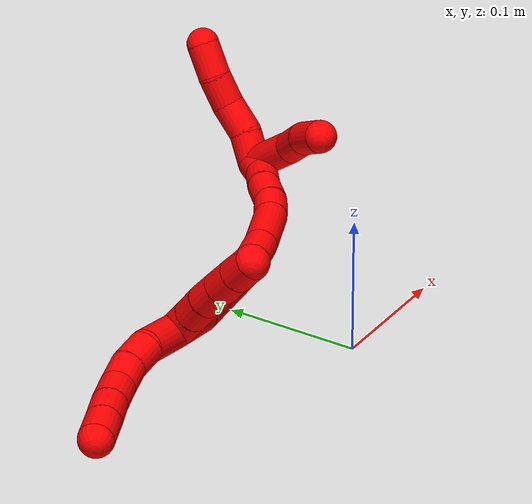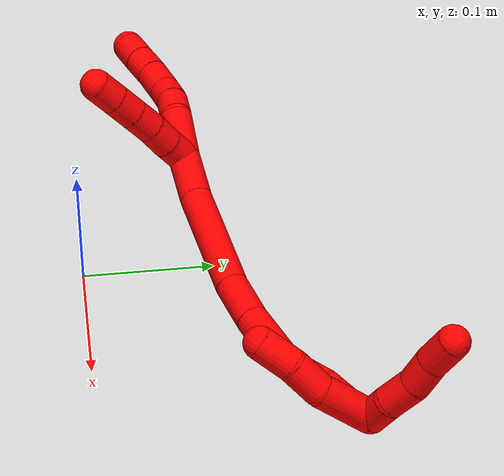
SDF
<sdf version="1.7">
 <world name="default">
  <model name="photoneo_s_sensor">
   <static>1</static>
   <pose>0 0 2 1.57079 1.57079 3.14159</pose>
   <link name="link">
    <inertial><mass>0.1</mass></inertial>
    <sensor name="sensor" type="depth">
     <update_rate>30</update_rate>
     <camera>
      <horizontal_fov>1.22</horizontal_fov>
      <image><width>1920</width><height>1200</height><format>B8G8R8</format></image>
      <clip><near>0.1</near><far>4</far></clip>
      <depth_camera><output>points</output></depth_camera>
     </camera>
     <plugin name="camera_plugin" filename="libgazebo_ros_depth_camera.so">
      <baseline>0.2</baseline>
      <alwaysOn>1</alwaysOn>
      <updateRate>0.0</updateRate>
      <cameraName>camera_ir</cameraName>
      <imageTopicName>/camera/color/image_raw</imageTopicName>
      <cameraInfoTopicName>/camera/color/camera_info</cameraInfoTopicName>
      <depthImageTopicName>/camera/depth/image_raw</depthImageTopicName>
      <depthImageCameraInfoTopicName>/camera/depth/camera_info</depthImageCameraInfoTopicName>
      <pointCloudTopicName>/camera/depth/points</pointCloudTopicName>
      <frameName>fr_optical</frameName>
      <pointCloudCutoff>0.1</pointCloudCutoff>
      <pointCloudCutoffMax>2.0</pointCloudCutoffMax>
      <distortionK1>0</distortionK1>
      <distortionK2>0</distortionK2>
      <distortionK3>0</distortionK3>
      <distortionT1>0</distortionT1>
      <distortionT2>0</distortionT2>
      <CxPrime>0</CxPrime>
      <Cx>0</Cx>
      <Cy>0</Cy>
      <focalLength>0</focalLength>
      <hackBaseline>0</hackBaseline>
     </plugin>
    </sensor>
   </link>
  </model>
  <model name="2">
   <static>0</static>
   <link name="2">
    <collision name="collision-cylinder-e_1_2_8">
     <pose>-0.0105 -0.000421 -0.017934 3.11811 -0.529544 -3.05503</pose>
     <geometry><cylinder><radius>0.0125</radius><length>0.041572</length></cylinder></geometry>
     <surface>
      <friction><ode><mu>1.16</mu><mu2>1.16</mu2><slip1>0</slip1><slip2>0</slip2></ode></friction>
      <contact><ode><kp>1e+06</kp><kd>1</kd><max_vel>0</max_vel><min_depth>0.001</min_depth></ode></contact>
     </surface>
    </collision>
    <visual name="visual-cylinder-e_1_2_8">
     <pose>-0.0105 -0.000421 -0.017934 3.11811 -0.529544 -3.05503</pose>
     <geometry><cylinder><radius>0.0125</radius><length>0.041572</length></cylinder></geometry>
     <material><ambient>1 0 0 1</ambient></material>
    </visual>
    <collision name="collision-cylinder-e_2_8_9">
     <pose>-0.025081 0.00215 -0.045741 -2.84726 -0.376693 1.81958</pose>
     <geometry><cylinder><radius>0.0125</radius><length>0.022188</length></cylinder></geometry>
     <surface>
      <friction><ode><mu>1.16</mu><mu2>1.16</mu2><slip1>0</slip1><slip2>0</slip2></ode></friction>
      <contact><ode><kp>1e+06</kp><kd>1</kd><max_vel>0</max_vel><min_depth>0.001</min_depth></ode></contact>
     </surface>
    </collision>
    <visual name="visual-cylinder-e_2_8_9">
     <pose>-0.025081 0.00215 -0.045741 -2.84726 -0.376693 1.81958</pose>
     <geometry><cylinder><radius>0.0125</radius><length>0.022188</length></cylinder></geometry>
     <material><ambient>1 0 0 1</ambient></material>
    </visual>
    <collision name="collision-cylinder-e_3_9_10">
     <pose>-0.031024 0.007864 -0.065318 -2.86827 -0.182679 1.17514</pose>
     <geometry><cylinder><radius>0.0125</radius><length>0.020498</length></cylinder></geometry>
     <surface>
      <friction><ode><mu>1.16</mu><mu2>1.16</mu2><slip1>0</slip1><slip2>0</slip2></ode></friction>
      <contact><ode><kp>1e+06</kp><kd>1</kd><max_vel>0</max_vel><min_depth>0.001</min_depth></ode></contact>
     </surface>
    </collision>
    <visual name="visual-cylinder-e_3_9_10">
     <pose>-0.031024 0.007864 -0.065318 -2.86827 -0.182679 1.17514</pose>
     <geometry><cylinder><radius>0.0125</radius><length>0.020498</length></cylinder></geometry>
     <material><ambient>1 0 0 1</ambient></material>
    </visual>
    <collision name="collision-cylinder-e_4_10_11">
     <pose>-0.035 0.010392 -0.08654 3.12488 -0.181513 -2.9585</pose>
     <geometry><cylinder><radius>0.0125</radius><length>0.023422</length></cylinder></geometry>
     <surface>
      <friction><ode><mu>1.16</mu><mu2>1.16</mu2><slip1>0</slip1><slip2>0</slip2></ode></friction>
      <contact><ode><kp>1e+06</kp><kd>1</kd><max_vel>0</max_vel><min_depth>0.001</min_depth></ode></contact>
     </surface>
    </collision>
    <visual name="visual-cylinder-e_4_10_11">
     <pose>-0.035 0.010392 -0.08654 3.12488 -0.181513 -2.9585</pose>
     <geometry><cylinder><radius>0.0125</radius><length>0.023422</length></cylinder></geometry>
     <material><ambient>1 0 0 1</ambient></material>
    </visual>
    <collision name="collision-cylinder-e_5_11_12">
     <pose>-0.038345 0.010185 -0.10828 3.14022 -0.119852 -3.11867</pose>
     <geometry><cylinder><radius>0.0125</radius><length>0.020594</length></cylinder></geometry>
     <surface>
      <friction><ode><mu>1.16</mu><mu2>1.16</mu2><slip1>0</slip1><slip2>0</slip2></ode></friction>
      <contact><ode><kp>1e+06</kp><kd>1</kd><max_vel>0</max_vel><min_depth>0.001</min_depth></ode></contact>
     </surface>
    </collision>
    <visual name="visual-cylinder-e_5_11_12">
     <pose>-0.038345 0.010185 -0.10828 3.14022 -0.119852 -3.11867</pose>
     <geometry><cylinder><radius>0.0125</radius><length>0.020594</length></cylinder></geometry>
     <material><ambient>1 0 0 1</ambient></material>
    </visual>
    <collision name="collision-cylinder-e_6_12_6">
     <pose>-0.041052 0.010538 -0.129259 -3.10749 -0.136279 2.6518</pose>
     <geometry><cylinder><radius>0.0125</radius><length>0.021725</length></cylinder></geometry>
     <surface>
      <friction><ode><mu>1.16</mu><mu2>1.16</mu2><slip1>0</slip1><slip2>0</slip2></ode></friction>
      <contact><ode><kp>1e+06</kp><kd>1</kd><max_vel>0</max_vel><min_depth>0.001</min_depth></ode></contact>
     </surface>
    </collision>
    <visual name="visual-cylinder-e_6_12_6">
     <pose>-0.041052 0.010538 -0.129259 -3.10749 -0.136279 2.6518</pose>
     <geometry><cylinder><radius>0.0125</radius><length>0.021725</length></cylinder></geometry>
     <material><ambient>1 0 0 1</ambient></material>
    </visual>
    <collision name="collision-cylinder-e_1_2_13">
     <pose>0.000914 -0.009584 -0.002705 1.84592 0.091547 0.120903</pose>
     <geometry><cylinder><radius>0.0125</radius><length>0.02</length></cylinder></geometry>
     <surface>
      <friction><ode><mu>1.16</mu><mu2>1.16</mu2><slip1>0</slip1><slip2>0</slip2></ode></friction>
      <contact><ode><kp>1e+06</kp><kd>1</kd><max_vel>0</max_vel><min_depth>0.001</min_depth></ode></contact>
     </surface>
    </collision>
    <visual name="visual-cylinder-e_1_2_13">
     <pose>0.000914 -0.009584 -0.002705 1.84592 0.091547 0.120903</pose>
     <geometry><cylinder><radius>0.0125</radius><length>0.02</length></cylinder></geometry>
     <material><ambient>1 0 0 1</ambient></material>
    </visual>
    <collision name="collision-cylinder-e_2_13_14">
     <pose>0.00225 -0.028638 -0.008591 1.8948 0.042206 0.058688</pose>
     <geometry><cylinder><radius>0.0125</radius><length>0.02</length></cylinder></geometry>
     <surface>
      <friction><ode><mu>1.16</mu><mu2>1.16</mu2><slip1>0</slip1><slip2>0</slip2></ode></friction>
      <contact><ode><kp>1e+06</kp><kd>1</kd><max_vel>0</max_vel><min_depth>0.001</min_depth></ode></contact>
     </surface>
    </collision>
    <visual name="visual-cylinder-e_2_13_14">
     <pose>0.00225 -0.028638 -0.008591 1.8948 0.042206 0.058688</pose>
     <geometry><cylinder><radius>0.0125</radius><length>0.02</length></cylinder></geometry>
     <material><ambient>1 0 0 1</ambient></material>
    </visual>
    <collision name="collision-cylinder-e_3_14_15">
     <pose>0.003872 -0.047486 -0.015036 1.90577 0.120266 0.169009</pose>
     <geometry><cylinder><radius>0.0125</radius><length>0.02</length></cylinder></geometry>
     <surface>
      <friction><ode><mu>1.16</mu><mu2>1.16</mu2><slip1>0</slip1><slip2>0</slip2></ode></friction>
      <contact><ode><kp>1e+06</kp><kd>1</kd><max_vel>0</max_vel><min_depth>0.001</min_depth></ode></contact>
     </surface>
    </collision>
    <visual name="visual-cylinder-e_3_14_15">
     <pose>0.003872 -0.047486 -0.015036 1.90577 0.120266 0.169009</pose>
     <geometry><cylinder><radius>0.0125</radius><length>0.02</length></cylinder></geometry>
     <material><ambient>1 0 0 1</ambient></material>
    </visual>
    <collision name="collision-cylinder-e_4_15_16">
     <pose>0.006288 -0.066196 -0.021673 1.91763 0.121949 0.173526</pose>
     <geometry><cylinder><radius>0.0125</radius><length>0.02</length></cylinder></geometry>
     <surface>
      <friction><ode><mu>1.16</mu><mu2>1.16</mu2><slip1>0</slip1><slip2>0</slip2></ode></friction>
      <contact><ode><kp>1e+06</kp><kd>1</kd><max_vel>0</max_vel><min_depth>0.001</min_depth></ode></contact>
     </surface>
    </collision>
    <visual name="visual-cylinder-e_4_15_16">
     <pose>0.006288 -0.066196 -0.021673 1.91763 0.121949 0.173526</pose>
     <geometry><cylinder><radius>0.0125</radius><length>0.02</length></cylinder></geometry>
     <material><ambient>1 0 0 1</ambient></material>
    </visual>
    <collision name="collision-cylinder-e_5_16_5">
     <pose>0.0088 -0.084819 -0.028519 1.92849 0.12986 0.18689</pose>
     <geometry><cylinder><radius>0.0125</radius><length>0.02</length></cylinder></geometry>
     <surface>
      <friction><ode><mu>1.16</mu><mu2>1.16</mu2><slip1>0</slip1><slip2>0</slip2></ode></friction>
      <contact><ode><kp>1e+06</kp><kd>1</kd><max_vel>0</max_vel><min_depth>0.001</min_depth></ode></contact>
     </surface>
    </collision>
    <visual name="visual-cylinder-e_5_16_5">
     <pose>0.0088 -0.084819 -0.028519 1.92849 0.12986 0.18689</pose>
     <geometry><cylinder><radius>0.0125</radius><length>0.02</length></cylinder></geometry>
     <material><ambient>1 0 0 1</ambient></material>
    </visual>
    <collision name="collision-cylinder-e_1_2_17">
     <pose>0.009092 0.001757 0.017634 -0.099326 0.474057 -0.024013</pose>
     <geometry><cylinder><radius>0.0125</radius><length>0.039835</length></cylinder></geometry>
     <surface>
      <friction><ode><mu>1.16</mu><mu2>1.16</mu2><slip1>0</slip1><slip2>0</slip2></ode></friction>
      <contact><ode><kp>1e+06</kp><kd>1</kd><max_vel>0</max_vel><min_depth>0.001</min_depth></ode></contact>
     </surface>
    </collision>
    <visual name="visual-cylinder-e_1_2_17">
     <pose>0.009092 0.001757 0.017634 -0.099326 0.474057 -0.024013</pose>
     <geometry><cylinder><radius>0.0125</radius><length>0.039835</length></cylinder></geometry>
     <material><ambient>1 0 0 1</ambient></material>
    </visual>
    <collision name="collision-cylinder-e_2_17_18">
     <pose>0.034629 0.004017 0.077939 -0.011771 0.367802 -0.00219</pose>
     <geometry><cylinder><radius>0.0125</radius><length>0.091467</length></cylinder></geometry>
     <surface>
      <friction><ode><mu>1.16</mu><mu2>1.16</mu2><slip1>0</slip1><slip2>0</slip2></ode></friction>
      <contact><ode><kp>1e+06</kp><kd>1</kd><max_vel>0</max_vel><min_depth>0.001</min_depth></ode></contact>
     </surface>
    </collision>
    <visual name="visual-cylinder-e_2_17_18">
     <pose>0.034629 0.004017 0.077939 -0.011771 0.367802 -0.00219</pose>
     <geometry><cylinder><radius>0.0125</radius><length>0.091467</length></cylinder></geometry>
     <material><ambient>1 0 0 1</ambient></material>
    </visual>
    <collision name="collision-cylinder-e_3_18_19">
     <pose>0.055621 0.004496 0.139049 0.001245 0.241817 0.000151</pose>
     <geometry><cylinder><radius>0.0125</radius><length>0.037981</length></cylinder></geometry>
     <surface>
      <friction><ode><mu>1.16</mu><mu2>1.16</mu2><slip1>0</slip1><slip2>0</slip2></ode></friction>
      <contact><ode><kp>1e+06</kp><kd>1</kd><max_vel>0</max_vel><min_depth>0.001</min_depth></ode></contact>
     </surface>
    </collision>
    <visual name="visual-cylinder-e_3_18_19">
     <pose>0.055621 0.004496 0.139049 0.001245 0.241817 0.000151</pose>
     <geometry><cylinder><radius>0.0125</radius><length>0.037981</length></cylinder></geometry>
     <material><ambient>1 0 0 1</ambient></material>
    </visual>
    <collision name="collision-cylinder-e_4_19_20">
     <pose>0.063453 0.004645 0.179356 -0.007859 0.14908 -0.000587</pose>
     <geometry><cylinder><radius>0.0125</radius><length>0.04423</length></cylinder></geometry>
     <surface>
      <friction><ode><mu>1.16</mu><mu2>1.16</mu2><slip1>0</slip1><slip2>0</slip2></ode></friction>
      <contact><ode><kp>1e+06</kp><kd>1</kd><max_vel>0</max_vel><min_depth>0.001</min_depth></ode></contact>
     </surface>
    </collision>
    <visual name="visual-cylinder-e_4_19_20">
     <pose>0.063453 0.004645 0.179356 -0.007859 0.14908 -0.000587</pose>
     <geometry><cylinder><radius>0.0125</radius><length>0.04423</length></cylinder></geometry>
     <material><ambient>1 0 0 1</ambient></material>
    </visual>
    <collision name="collision-cylinder-e_5_20_21">
     <pose>0.066318 0.004928 0.211314 -0.010972 -0.041596 0.000228</pose>
     <geometry><cylinder><radius>0.0125</radius><length>0.020196</length></cylinder></geometry>
     <surface>
      <friction><ode><mu>1.16</mu><mu2>1.16</mu2><slip1>0</slip1><slip2>0</slip2></ode></friction>
      <contact><ode><kp>1e+06</kp><kd>1</kd><max_vel>0</max_vel><min_depth>0.001</min_depth></ode></contact>
     </surface>
    </collision>
    <visual name="visual-cylinder-e_5_20_21">
     <pose>0.066318 0.004928 0.211314 -0.010972 -0.041596 0.000228</pose>
     <geometry><cylinder><radius>0.0125</radius><length>0.020196</length></cylinder></geometry>
     <material><ambient>1 0 0 1</ambient></material>
    </visual>
    <collision name="collision-cylinder-e_6_21_22">
     <pose>0.06351 0.006915 0.232788 -0.163395 -0.204053 0.016766</pose>
     <geometry><cylinder><radius>0.0125</radius><length>0.023565</length></cylinder></geometry>
     <surface>
      <friction><ode><mu>1.16</mu><mu2>1.16</mu2><slip1>0</slip1><slip2>0</slip2></ode></friction>
      <contact><ode><kp>1e+06</kp><kd>1</kd><max_vel>0</max_vel><min_depth>0.001</min_depth></ode></contact>
     </surface>
    </collision>
    <visual name="visual-cylinder-e_6_21_22">
     <pose>0.06351 0.006915 0.232788 -0.163395 -0.204053 0.016766</pose>
     <geometry><cylinder><radius>0.0125</radius><length>0.023565</length></cylinder></geometry>
     <material><ambient>1 0 0 1</ambient></material>
    </visual>
    <collision name="collision-cylinder-e_7_22_23">
     <pose>0.060808 0.010771 0.255316 -0.175759 -0.027788 0.002448</pose>
     <geometry><cylinder><radius>0.0125</radius><length>0.022645</length></cylinder></geometry>
     <surface>
      <friction><ode><mu>1.16</mu><mu2>1.16</mu2><slip1>0</slip1><slip2>0</slip2></ode></friction>
      <contact><ode><kp>1e+06</kp><kd>1</kd><max_vel>0</max_vel><min_depth>0.001</min_depth></ode></contact>
     </surface>
    </collision>
    <visual name="visual-cylinder-e_7_22_23">
     <pose>0.060808 0.010771 0.255316 -0.175759 -0.027788 0.002448</pose>
     <geometry><cylinder><radius>0.0125</radius><length>0.022645</length></cylinder></geometry>
     <material><ambient>1 0 0 1</ambient></material>
    </visual>
    <collision name="collision-cylinder-e_8_23_1">
     <pose>0.058121 0.01539 0.275851 -0.274043 -0.238523 0.033043</pose>
     <geometry><cylinder><radius>0.0125</radius><length>0.02008</length></cylinder></geometry>
     <surface>
      <friction><ode><mu>1.16</mu><mu2>1.16</mu2><slip1>0</slip1><slip2>0</slip2></ode></friction>
      <contact><ode><kp>1e+06</kp><kd>1</kd><max_vel>0</max_vel><min_depth>0.001</min_depth></ode></contact>
     </surface>
    </collision>
    <visual name="visual-cylinder-e_8_23_1">
     <pose>0.058121 0.01539 0.275851 -0.274043 -0.238523 0.033043</pose>
     <geometry><cylinder><radius>0.0125</radius><length>0.02008</length></cylinder></geometry>
     <material><ambient>1 0 0 1</ambient></material>
    </visual>
    <collision name="collision-cylinder-e_1_1_24">
     <pose>0.047955 0.011032 0.291443 0.84586 -0.694933 -0.323168</pose>
     <geometry><cylinder><radius>0.0125</radius><length>0.024346</length></cylinder></geometry>
     <surface>
      <friction><ode><mu>1.16</mu><mu2>1.16</mu2><slip1>0</slip1><slip2>0</slip2></ode></friction>
      <contact><ode><kp>1e+06</kp><kd>1</kd><max_vel>0</max_vel><min_depth>0.001</min_depth></ode></contact>
     </surface>
    </collision>
    <visual name="visual-cylinder-e_1_1_24">
     <pose>0.047955 0.011032 0.291443 0.84586 -0.694933 -0.323168</pose>
     <geometry><cylinder><radius>0.0125</radius><length>0.024346</length></cylinder></geometry>
     <material><ambient>1 0 0 1</ambient></material>
    </visual>
    <collision name="collision-cylinder-e_2_24_25">
     <pose>0.029754 -0.000554 0.303505 0.663956 -0.949889 -0.350883</pose>
     <geometry><cylinder><radius>0.0125</radius><length>0.025589</length></cylinder></geometry>
     <surface>
      <friction><ode><mu>1.16</mu><mu2>1.16</mu2><slip1>0</slip1><slip2>0</slip2></ode></friction>
      <contact><ode><kp>1e+06</kp><kd>1</kd><max_vel>0</max_vel><min_depth>0.001</min_depth></ode></contact>
     </surface>
    </collision>
    <visual name="visual-cylinder-e_2_24_25">
     <pose>0.029754 -0.000554 0.303505 0.663956 -0.949889 -0.350883</pose>
     <geometry><cylinder><radius>0.0125</radius><length>0.025589</length></cylinder></geometry>
     <material><ambient>1 0 0 1</ambient></material>
    </visual>
    <collision name="collision-cylinder-e_3_25_26">
     <pose>0.0101 -0.011592 0.312853 1.07537 -0.900364 -0.561144</pose>
     <geometry><cylinder><radius>0.0125</radius><length>0.023604</length></cylinder></geometry>
     <surface>
      <friction><ode><mu>1.16</mu><mu2>1.16</mu2><slip1>0</slip1><slip2>0</slip2></ode></friction>
      <contact><ode><kp>1e+06</kp><kd>1</kd><max_vel>0</max_vel><min_depth>0.001</min_depth></ode></contact>
     </surface>
    </collision>
    <visual name="visual-cylinder-e_3_25_26">
     <pose>0.0101 -0.011592 0.312853 1.07537 -0.900364 -0.561144</pose>
     <geometry><cylinder><radius>0.0125</radius><length>0.023604</length></cylinder></geometry>
     <material><ambient>1 0 0 1</ambient></material>
    </visual>
    <collision name="collision-cylinder-e_4_26_4">
     <pose>-0.008434 -0.025408 0.32222 0.896948 -0.778007 -0.389459</pose>
     <geometry><cylinder><radius>0.0125</radius><length>0.026462</length></cylinder></geometry>
     <surface>
      <friction><ode><mu>1.16</mu><mu2>1.16</mu2><slip1>0</slip1><slip2>0</slip2></ode></friction>
      <contact><ode><kp>1e+06</kp><kd>1</kd><max_vel>0</max_vel><min_depth>0.001</min_depth></ode></contact>
     </surface>
    </collision>
    <visual name="visual-cylinder-e_4_26_4">
     <pose>-0.008434 -0.025408 0.32222 0.896948 -0.778007 -0.389459</pose>
     <geometry><cylinder><radius>0.0125</radius><length>0.026462</length></cylinder></geometry>
     <material><ambient>1 0 0 1</ambient></material>
    </visual>
    <collision name="collision-cylinder-e_1_1_27">
     <pose>0.061631 -0.000971 0.274861 2.07086 0.265235 0.442443</pose>
     <geometry><cylinder><radius>0.0125</radius><length>0.044874</length></cylinder></geometry>
     <surface>
      <friction><ode><mu>1.16</mu><mu2>1.16</mu2><slip1>0</slip1><slip2>0</slip2></ode></friction>
      <contact><ode><kp>1e+06</kp><kd>1</kd><max_vel>0</max_vel><min_depth>0.001</min_depth></ode></contact>
     </surface>
    </collision>
    <visual name="visual-cylinder-e_1_1_27">
     <pose>0.061631 -0.000971 0.274861 2.07086 0.265235 0.442443</pose>
     <geometry><cylinder><radius>0.0125</radius><length>0.044874</length></cylinder></geometry>
     <material><ambient>1 0 0 1</ambient></material>
    </visual>
    <collision name="collision-cylinder-e_2_27_28">
     <pose>0.067868 -0.030367 0.256232 2.24151 0.026813 0.055489</pose>
     <geometry><cylinder><radius>0.0125</radius><length>0.026548</length></cylinder></geometry>
     <surface>
      <friction><ode><mu>1.16</mu><mu2>1.16</mu2><slip1>0</slip1><slip2>0</slip2></ode></friction>
      <contact><ode><kp>1e+06</kp><kd>1</kd><max_vel>0</max_vel><min_depth>0.001</min_depth></ode></contact>
     </surface>
    </collision>
    <visual name="visual-cylinder-e_2_27_28">
     <pose>0.067868 -0.030367 0.256232 2.24151 0.026813 0.055489</pose>
     <geometry><cylinder><radius>0.0125</radius><length>0.026548</length></cylinder></geometry>
     <material><ambient>1 0 0 1</ambient></material>
    </visual>
    <collision name="collision-cylinder-e_3_28_3">
     <pose>0.070462 -0.05023 0.237519 2.40614 0.157234 0.403417</pose>
     <geometry><cylinder><radius>0.0125</radius><length>0.028578</length></cylinder></geometry>
     <surface>
      <friction><ode><mu>1.16</mu><mu2>1.16</mu2><slip1>0</slip1><slip2>0</slip2></ode></friction>
      <contact><ode><kp>1e+06</kp><kd>1</kd><max_vel>0</max_vel><min_depth>0.001</min_depth></ode></contact>
     </surface>
    </collision>
    <visual name="visual-cylinder-e_3_28_3">
     <pose>0.070462 -0.05023 0.237519 2.40614 0.157234 0.403417</pose>
     <geometry><cylinder><radius>0.0125</radius><length>0.028578</length></cylinder></geometry>
     <material><ambient>1 0 0 1</ambient></material>
    </visual>
    <collision name="collision-sphere-3">
     <pose>0.072699 -0.059698 0.227054 0 -0 0</pose>
     <geometry><sphere><radius>0.0125</radius></sphere></geometry>
     <surface>
      <friction><ode><mu>1.16</mu><mu2>1.16</mu2><slip1>0</slip1><slip2>0</slip2></ode></friction>
      <contact><ode><kp>1e+06</kp><kd>1</kd><max_vel>0</max_vel><min_depth>0.001</min_depth></ode></contact>
     </surface>
    </collision>
    <visual name="visual-sphere-3">
     <pose>0.072699 -0.059698 0.227054 0 -0 0</pose>
     <geometry><sphere><radius>0.0125</radius></sphere></geometry>
     <material><ambient>1 0 0 1</ambient></material>
    </visual>
    <collision name="collision-sphere-28">
     <pose>0.068224 -0.040761 0.247984 0 -0 0</pose>
     <geometry><sphere><radius>0.0125</radius></sphere></geometry>
     <surface>
      <friction><ode><mu>1.16</mu><mu2>1.16</mu2><slip1>0</slip1><slip2>0</slip2></ode></friction>
      <contact><ode><kp>1e+06</kp><kd>1</kd><max_vel>0</max_vel><min_depth>0.001</min_depth></ode></contact>
     </surface>
    </collision>
    <visual name="visual-sphere-28">
     <pose>0.068224 -0.040761 0.247984 0 -0 0</pose>
     <geometry><sphere><radius>0.0125</radius></sphere></geometry>
     <material><ambient>1 0 0 1</ambient></material>
    </visual>
    <collision name="collision-sphere-27">
     <pose>0.067512 -0.019972 0.264479 0 -0 0</pose>
     <geometry><sphere><radius>0.0125</radius></sphere></geometry>
     <surface>
      <friction><ode><mu>1.16</mu><mu2>1.16</mu2><slip1>0</slip1><slip2>0</slip2></ode></friction>
      <contact><ode><kp>1e+06</kp><kd>1</kd><max_vel>0</max_vel><min_depth>0.001</min_depth></ode></contact>
     </surface>
    </collision>
    <visual name="visual-sphere-27">
     <pose>0.067512 -0.019972 0.264479 0 -0 0</pose>
     <geometry><sphere><radius>0.0125</radius></sphere></geometry>
     <material><ambient>1 0 0 1</ambient></material>
    </visual>
    <collision name="collision-sphere-4">
     <pose>-0.01772 -0.032772 0.328101 0 -0 0</pose>
     <geometry><sphere><radius>0.0125</radius></sphere></geometry>
     <surface>
      <friction><ode><mu>1.16</mu><mu2>1.16</mu2><slip1>0</slip1><slip2>0</slip2></ode></friction>
      <contact><ode><kp>1e+06</kp><kd>1</kd><max_vel>0</max_vel><min_depth>0.001</min_depth></ode></contact>
     </surface>
    </collision>
    <visual name="visual-sphere-4">
     <pose>-0.01772 -0.032772 0.328101 0 -0 0</pose>
     <geometry><sphere><radius>0.0125</radius></sphere></geometry>
     <material><ambient>1 0 0 1</ambient></material>
    </visual>
    <collision name="collision-sphere-26">
     <pose>0.000852 -0.018043 0.316339 0 -0 0</pose>
     <geometry><sphere><radius>0.0125</radius></sphere></geometry>
     <surface>
      <friction><ode><mu>1.16</mu><mu2>1.16</mu2><slip1>0</slip1><slip2>0</slip2></ode></friction>
      <contact><ode><kp>1e+06</kp><kd>1</kd><max_vel>0</max_vel><min_depth>0.001</min_depth></ode></contact>
     </surface>
    </collision>
    <visual name="visual-sphere-26">
     <pose>0.000852 -0.018043 0.316339 0 -0 0</pose>
     <geometry><sphere><radius>0.0125</radius></sphere></geometry>
     <material><ambient>1 0 0 1</ambient></material>
    </visual>
    <collision name="collision-sphere-25">
     <pose>0.019347 -0.005141 0.309367 0 -0 0</pose>
     <geometry><sphere><radius>0.0125</radius></sphere></geometry>
     <surface>
      <friction><ode><mu>1.16</mu><mu2>1.16</mu2><slip1>0</slip1><slip2>0</slip2></ode></friction>
      <contact><ode><kp>1e+06</kp><kd>1</kd><max_vel>0</max_vel><min_depth>0.001</min_depth></ode></contact>
     </surface>
    </collision>
    <visual name="visual-sphere-25">
     <pose>0.019347 -0.005141 0.309367 0 -0 0</pose>
     <geometry><sphere><radius>0.0125</radius></sphere></geometry>
     <material><ambient>1 0 0 1</ambient></material>
    </visual>
    <collision name="collision-sphere-24">
     <pose>0.04016 0.004033 0.297643 0 -0 0</pose>
     <geometry><sphere><radius>0.0125</radius></sphere></geometry>
     <surface>
      <friction><ode><mu>1.16</mu><mu2>1.16</mu2><slip1>0</slip1><slip2>0</slip2></ode></friction>
      <contact><ode><kp>1e+06</kp><kd>1</kd><max_vel>0</max_vel><min_depth>0.001</min_depth></ode></contact>
     </surface>
    </collision>
    <visual name="visual-sphere-24">
     <pose>0.04016 0.004033 0.297643 0 -0 0</pose>
     <geometry><sphere><radius>0.0125</radius></sphere></geometry>
     <material><ambient>1 0 0 1</ambient></material>
    </visual>
    <collision name="collision-sphere-1">
     <pose>0.055749 0.018031 0.285243 0 -0 0</pose>
     <geometry><sphere><radius>0.0125</radius></sphere></geometry>
     <surface>
      <friction><ode><mu>1.16</mu><mu2>1.16</mu2><slip1>0</slip1><slip2>0</slip2></ode></friction>
      <contact><ode><kp>1e+06</kp><kd>1</kd><max_vel>0</max_vel><min_depth>0.001</min_depth></ode></contact>
     </surface>
    </collision>
    <visual name="visual-sphere-1">
     <pose>0.055749 0.018031 0.285243 0 -0 0</pose>
     <geometry><sphere><radius>0.0125</radius></sphere></geometry>
     <material><ambient>1 0 0 1</ambient></material>
    </visual>
    <collision name="collision-sphere-23">
     <pose>0.060493 0.01275 0.26646 0 -0 0</pose>
     <geometry><sphere><radius>0.0125</radius></sphere></geometry>
     <surface>
      <friction><ode><mu>1.16</mu><mu2>1.16</mu2><slip1>0</slip1><slip2>0</slip2></ode></friction>
      <contact><ode><kp>1e+06</kp><kd>1</kd><max_vel>0</max_vel><min_depth>0.001</min_depth></ode></contact>
     </surface>
    </collision>
    <visual name="visual-sphere-23">
     <pose>0.060493 0.01275 0.26646 0 -0 0</pose>
     <geometry><sphere><radius>0.0125</radius></sphere></geometry>
     <material><ambient>1 0 0 1</ambient></material>
    </visual>
    <collision name="collision-sphere-22">
     <pose>0.061123 0.008792 0.244172 0 -0 0</pose>
     <geometry><sphere><radius>0.0125</radius></sphere></geometry>
     <surface>
      <friction><ode><mu>1.16</mu><mu2>1.16</mu2><slip1>0</slip1><slip2>0</slip2></ode></friction>
      <contact><ode><kp>1e+06</kp><kd>1</kd><max_vel>0</max_vel><min_depth>0.001</min_depth></ode></contact>
     </surface>
    </collision>
    <visual name="visual-sphere-22">
     <pose>0.061123 0.008792 0.244172 0 -0 0</pose>
     <geometry><sphere><radius>0.0125</radius></sphere></geometry>
     <material><ambient>1 0 0 1</ambient></material>
    </visual>
    <collision name="collision-sphere-21">
     <pose>0.065898 0.005038 0.221403 0 -0 0</pose>
     <geometry><sphere><radius>0.0125</radius></sphere></geometry>
     <surface>
      <friction><ode><mu>1.16</mu><mu2>1.16</mu2><slip1>0</slip1><slip2>0</slip2></ode></friction>
      <contact><ode><kp>1e+06</kp><kd>1</kd><max_vel>0</max_vel><min_depth>0.001</min_depth></ode></contact>
     </surface>
    </collision>
    <visual name="visual-sphere-21">
     <pose>0.065898 0.005038 0.221403 0 -0 0</pose>
     <geometry><sphere><radius>0.0125</radius></sphere></geometry>
     <material><ambient>1 0 0 1</ambient></material>
    </visual>
    <collision name="collision-sphere-12">
     <pose>-0.039576 0.010171 -0.118503 0 -0 0</pose>
     <geometry><sphere><radius>0.0125</radius></sphere></geometry>
     <surface>
      <friction><ode><mu>1.16</mu><mu2>1.16</mu2><slip1>0</slip1><slip2>0</slip2></ode></friction>
      <contact><ode><kp>1e+06</kp><kd>1</kd><max_vel>0</max_vel><min_depth>0.001</min_depth></ode></contact>
     </surface>
    </collision>
    <visual name="visual-sphere-12">
     <pose>-0.039576 0.010171 -0.118503 0 -0 0</pose>
     <geometry><sphere><radius>0.0125</radius></sphere></geometry>
     <material><ambient>1 0 0 1</ambient></material>
    </visual>
    <collision name="collision-sphere-11">
     <pose>-0.037114 0.010199 -0.098057 0 -0 0</pose>
     <geometry><sphere><radius>0.0125</radius></sphere></geometry>
     <surface>
      <friction><ode><mu>1.16</mu><mu2>1.16</mu2><slip1>0</slip1><slip2>0</slip2></ode></friction>
      <contact><ode><kp>1e+06</kp><kd>1</kd><max_vel>0</max_vel><min_depth>0.001</min_depth></ode></contact>
     </surface>
    </collision>
    <visual name="visual-sphere-11">
     <pose>-0.037114 0.010199 -0.098057 0 -0 0</pose>
     <geometry><sphere><radius>0.0125</radius></sphere></geometry>
     <material><ambient>1 0 0 1</ambient></material>
    </visual>
    <collision name="collision-sphere-10">
     <pose>-0.032886 0.010584 -0.075023 0 -0 0</pose>
     <geometry><sphere><radius>0.0125</radius></sphere></geometry>
     <surface>
      <friction><ode><mu>1.16</mu><mu2>1.16</mu2><slip1>0</slip1><slip2>0</slip2></ode></friction>
      <contact><ode><kp>1e+06</kp><kd>1</kd><max_vel>0</max_vel><min_depth>0.001</min_depth></ode></contact>
     </surface>
    </collision>
    <visual name="visual-sphere-10">
     <pose>-0.032886 0.010584 -0.075023 0 -0 0</pose>
     <geometry><sphere><radius>0.0125</radius></sphere></geometry>
     <material><ambient>1 0 0 1</ambient></material>
    </visual>
    <collision name="collision-sphere-9">
     <pose>-0.029162 0.005143 -0.055614 0 -0 0</pose>
     <geometry><sphere><radius>0.0125</radius></sphere></geometry>
     <surface>
      <friction><ode><mu>1.16</mu><mu2>1.16</mu2><slip1>0</slip1><slip2>0</slip2></ode></friction>
      <contact><ode><kp>1e+06</kp><kd>1</kd><max_vel>0</max_vel><min_depth>0.001</min_depth></ode></contact>
     </surface>
    </collision>
    <visual name="visual-sphere-9">
     <pose>-0.029162 0.005143 -0.055614 0 -0 0</pose>
     <geometry><sphere><radius>0.0125</radius></sphere></geometry>
     <material><ambient>1 0 0 1</ambient></material>
    </visual>
    <collision name="collision-sphere-2">
     <geometry><sphere><radius>0.0125</radius></sphere></geometry>
     <surface>
      <friction><ode><mu>1.16</mu><mu2>1.16</mu2><slip1>0</slip1><slip2>0</slip2></ode></friction>
      <contact><ode><kp>1e+06</kp><kd>1</kd><max_vel>0</max_vel><min_depth>0.001</min_depth></ode></contact>
     </surface>
    </collision>
    <visual name="visual-sphere-2">
     <geometry><sphere><radius>0.0125</radius></sphere></geometry>
     <material><ambient>1 0 0 1</ambient></material>
    </visual>
    <collision name="collision-sphere-19">
     <pose>0.060168 0.004473 0.157487 0 -0 0</pose>
     <geometry><sphere><radius>0.0125</radius></sphere></geometry>
     <surface>
      <friction><ode><mu>1.16</mu><mu2>1.16</mu2><slip1>0</slip1><slip2>0</slip2></ode></friction>
      <contact><ode><kp>1e+06</kp><kd>1</kd><max_vel>0</max_vel><min_depth>0.001</min_depth></ode></contact>
     </surface>
    </collision>
    <visual name="visual-sphere-19">
     <pose>0.060168 0.004473 0.157487 0 -0 0</pose>
     <geometry><sphere><radius>0.0125</radius></sphere></geometry>
     <material><ambient>1 0 0 1</ambient></material>
    </visual>
    <collision name="collision-sphere-8">
     <pose>-0.021 -0.000842 -0.035869 0 -0 0</pose>
     <geometry><sphere><radius>0.0125</radius></sphere></geometry>
     <surface>
      <friction><ode><mu>1.16</mu><mu2>1.16</mu2><slip1>0</slip1><slip2>0</slip2></ode></friction>
      <contact><ode><kp>1e+06</kp><kd>1</kd><max_vel>0</max_vel><min_depth>0.001</min_depth></ode></contact>
     </surface>
    </collision>
    <visual name="visual-sphere-8">
     <pose>-0.021 -0.000842 -0.035869 0 -0 0</pose>
     <geometry><sphere><radius>0.0125</radius></sphere></geometry>
     <material><ambient>1 0 0 1</ambient></material>
    </visual>
    <collision name="collision-sphere-6">
     <pose>-0.042528 0.010905 -0.140014 0 -0 0</pose>
     <geometry><sphere><radius>0.0125</radius></sphere></geometry>
     <surface>
      <friction><ode><mu>1.16</mu><mu2>1.16</mu2><slip1>0</slip1><slip2>0</slip2></ode></friction>
      <contact><ode><kp>1e+06</kp><kd>1</kd><max_vel>0</max_vel><min_depth>0.001</min_depth></ode></contact>
     </surface>
    </collision>
    <visual name="visual-sphere-6">
     <pose>-0.042528 0.010905 -0.140014 0 -0 0</pose>
     <geometry><sphere><radius>0.0125</radius></sphere></geometry>
     <material><ambient>1 0 0 1</ambient></material>
    </visual>
    <collision name="collision-sphere-13">
     <pose>0.001828 -0.019167 -0.005411 0 -0 0</pose>
     <geometry><sphere><radius>0.0125</radius></sphere></geometry>
     <surface>
      <friction><ode><mu>1.16</mu><mu2>1.16</mu2><slip1>0</slip1><slip2>0</slip2></ode></friction>
      <contact><ode><kp>1e+06</kp><kd>1</kd><max_vel>0</max_vel><min_depth>0.001</min_depth></ode></contact>
     </surface>
    </collision>
    <visual name="visual-sphere-13">
     <pose>0.001828 -0.019167 -0.005411 0 -0 0</pose>
     <geometry><sphere><radius>0.0125</radius></sphere></geometry>
     <material><ambient>1 0 0 1</ambient></material>
    </visual>
    <collision name="collision-sphere-14">
     <pose>0.002672 -0.03811 -0.011772 0 -0 0</pose>
     <geometry><sphere><radius>0.0125</radius></sphere></geometry>
     <surface>
      <friction><ode><mu>1.16</mu><mu2>1.16</mu2><slip1>0</slip1><slip2>0</slip2></ode></friction>
      <contact><ode><kp>1e+06</kp><kd>1</kd><max_vel>0</max_vel><min_depth>0.001</min_depth></ode></contact>
     </surface>
    </collision>
    <visual name="visual-sphere-14">
     <pose>0.002672 -0.03811 -0.011772 0 -0 0</pose>
     <geometry><sphere><radius>0.0125</radius></sphere></geometry>
     <material><ambient>1 0 0 1</ambient></material>
    </visual>
    <collision name="collision-sphere-15">
     <pose>0.005072 -0.056862 -0.0183 0 -0 0</pose>
     <geometry><sphere><radius>0.0125</radius></sphere></geometry>
     <surface>
      <friction><ode><mu>1.16</mu><mu2>1.16</mu2><slip1>0</slip1><slip2>0</slip2></ode></friction>
      <contact><ode><kp>1e+06</kp><kd>1</kd><max_vel>0</max_vel><min_depth>0.001</min_depth></ode></contact>
     </surface>
    </collision>
    <visual name="visual-sphere-15">
     <pose>0.005072 -0.056862 -0.0183 0 -0 0</pose>
     <geometry><sphere><radius>0.0125</radius></sphere></geometry>
     <material><ambient>1 0 0 1</ambient></material>
    </visual>
    <collision name="collision-sphere-16">
     <pose>0.007505 -0.075531 -0.025047 0 -0 0</pose>
     <geometry><sphere><radius>0.0125</radius></sphere></geometry>
     <surface>
      <friction><ode><mu>1.16</mu><mu2>1.16</mu2><slip1>0</slip1><slip2>0</slip2></ode></friction>
      <contact><ode><kp>1e+06</kp><kd>1</kd><max_vel>0</max_vel><min_depth>0.001</min_depth></ode></contact>
     </surface>
    </collision>
    <visual name="visual-sphere-16">
     <pose>0.007505 -0.075531 -0.025047 0 -0 0</pose>
     <geometry><sphere><radius>0.0125</radius></sphere></geometry>
     <material><ambient>1 0 0 1</ambient></material>
    </visual>
    <collision name="collision-sphere-5">
     <pose>0.010095 -0.094108 -0.031991 0 -0 0</pose>
     <geometry><sphere><radius>0.0125</radius></sphere></geometry>
     <surface>
      <friction><ode><mu>1.16</mu><mu2>1.16</mu2><slip1>0</slip1><slip2>0</slip2></ode></friction>
      <contact><ode><kp>1e+06</kp><kd>1</kd><max_vel>0</max_vel><min_depth>0.001</min_depth></ode></contact>
     </surface>
    </collision>
    <visual name="visual-sphere-5">
     <pose>0.010095 -0.094108 -0.031991 0 -0 0</pose>
     <geometry><sphere><radius>0.0125</radius></sphere></geometry>
     <material><ambient>1 0 0 1</ambient></material>
    </visual>
    <collision name="collision-sphere-17">
     <pose>0.018185 0.003515 0.035268 0 -0 0</pose>
     <geometry><sphere><radius>0.0125</radius></sphere></geometry>
     <surface>
      <friction><ode><mu>1.16</mu><mu2>1.16</mu2><slip1>0</slip1><slip2>0</slip2></ode></friction>
      <contact><ode><kp>1e+06</kp><kd>1</kd><max_vel>0</max_vel><min_depth>0.001</min_depth></ode></contact>
     </surface>
    </collision>
    <visual name="visual-sphere-17">
     <pose>0.018185 0.003515 0.035268 0 -0 0</pose>
     <geometry><sphere><radius>0.0125</radius></sphere></geometry>
     <material><ambient>1 0 0 1</ambient></material>
    </visual>
    <collision name="collision-sphere-18">
     <pose>0.051073 0.004519 0.120611 0 -0 0</pose>
     <geometry><sphere><radius>0.0125</radius></sphere></geometry>
     <surface>
      <friction><ode><mu>1.16</mu><mu2>1.16</mu2><slip1>0</slip1><slip2>0</slip2></ode></friction>
      <contact><ode><kp>1e+06</kp><kd>1</kd><max_vel>0</max_vel><min_depth>0.001</min_depth></ode></contact>
     </surface>
    </collision>
    <visual name="visual-sphere-18">
     <pose>0.051073 0.004519 0.120611 0 -0 0</pose>
     <geometry><sphere><radius>0.0125</radius></sphere></geometry>
     <material><ambient>1 0 0 1</ambient></material>
    </visual>
    <collision name="collision-sphere-20">
     <pose>0.066738 0.004817 0.201226 0 -0 0</pose>
     <geometry><sphere><radius>0.0125</radius></sphere></geometry>
     <surface>
      <friction><ode><mu>1.16</mu><mu2>1.16</mu2><slip1>0</slip1><slip2>0</slip2></ode></friction>
      <contact><ode><kp>1e+06</kp><kd>1</kd><max_vel>0</max_vel><min_depth>0.001</min_depth></ode></contact>
     </surface>
    </collision>
    <visual name="visual-sphere-20">
     <pose>0.066738 0.004817 0.201226 0 -0 0</pose>
     <geometry><sphere><radius>0.0125</radius></sphere></geometry>
     <material><ambient>1 0 0 1</ambient></material>
    </visual>
    <inertial>
     <pose>0.024888 -0.006945 0.116163 0 -0 0</pose>
     <mass>0.75</mass>
     <inertia><ixx>0.000109</ixx><ixy>0</ixy><ixz>0</ixz><iyy>9.8e-05</iyy><iyz>0</iyz><izz>7e-06</izz></inertia>
    </inertial>
   </link>
   <pose>-0.090383 0.086479 0.032848 -1.48397 0.491517 -1.00816</pose>
  </model>
 </world>
</sdf>
